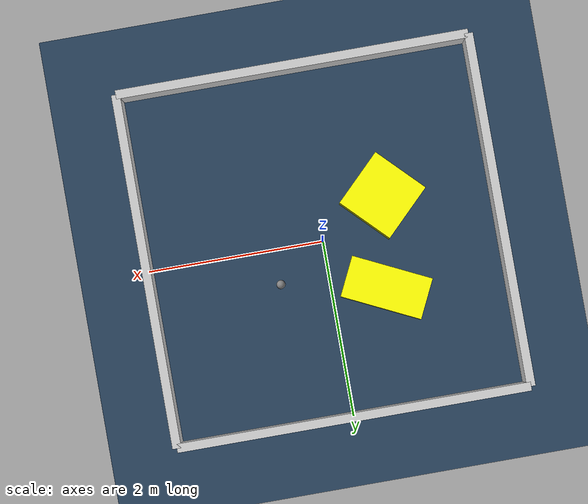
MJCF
<?xml version="1.0" ?>
<mujoco model="generated_environment">
  <option timestep="0.01" integrator="RK4" cone="elliptic"/>
  <default>
    <geom density="1"/>
  </default>
  <asset>
    <texture builtin="gradient" height="3072" rgb1="0.3 0.5 0.7" rgb2="0 0 0" type="skybox" width="512"/>
    <texture builtin="checker" height="300" mark="edge" markrgb="0.8 0.8 0.8" name="groundplane" rgb1="0.2 0.3 0.4" rgb2="0.1 0.2 0.3" type="2d" width="300"/>
    <material name="groundplane" reflectance="0.2" texrepeat="5 5" texture="groundplane" texuniform="true"/>
    <material name="robot" rgba="0.0 1.0 0.0 1"/>
  </asset>
  <worldbody>
    <light dir="0 0 -1" directional="true" pos="0 0 1.5"/>
    <geom condim="4" friction="1.0 0.005 0.001" material="groundplane" name="floor" size="0 0 0.05" type="plane"/>
    <body name="walls">
      <geom name="wall_1" condim="4" pos="-2.0 0.0 0.3" rgba="0.800000011920929 0.800000011920929 0.800000011920929 1.0" size="0.05 2.0 0.3" type="box"/>
      <geom name="wall_2" condim="4" pos="2.0 0.0 0.3" rgba="0.800000011920929 0.800000011920929 0.800000011920929 1.0" size="0.05 2.0 0.3" type="box"/>
      <geom name="wall_3" condim="4" pos="0.0 -2.0 0.3" rgba="0.800000011920929 0.800000011920929 0.800000011920929 1.0" size="2.0 0.05 0.3" type="box"/>
      <geom name="wall_4" condim="4" pos="0.0 2.0 0.3" rgba="0.800000011920929 0.800000011920929 0.800000011920929 1.0" size="2.0 0.05 0.3" type="box"/>
    </body>
    <body name="robot">
      <joint name="joint_x" type="slide" pos="0 0 0" axis="1 0 0"/>
      <joint name="joint_y" type="slide" pos="0 0 0" axis="0 1 0"/>
      <geom name="robot" type="sphere" pos="0.5501062614114569 0.3969801089982341 0.2" size="0.05" mass="5." friction="1.0 0.005 0.0001" condim="4"/>
      <site name="sensor_ball"/>
    </body>
    <body name="obstacle_1_movable">
      <geom name="obstacle_1_movable" condim="4" pos="-0.6128513174608354 0.6378030932084502 0.2" euler="0 0 64.21954168647312" friction="1.0 0.005 0.001" rgba="1 1 0 1" size="0.23817989625506075 0.4694133604311625 0.2" type="box" mass="0.1"/>
      <joint type="free"/>
    </body>
    <body name="obstacle_2_movable">
      <geom name="obstacle_2_movable" condim="4" pos="-0.7478645017961113 -0.3902406155631477 0.2" euler="0 0 224.80988519866085" friction="1.0 0.005 0.001" rgba="1 1 0 1" size="0.3504716107775282 0.34490958193403587 0.2" type="box" mass="0.1"/>
      <joint type="free"/>
    </body>
  </worldbody>
  <actuator>
    <motor name="actuator_x" joint="joint_x" gear="1" ctrlrange="-1 1"/>
    <motor name="actuator_y" joint="joint_y" gear="1" ctrlrange="-1 1"/>
  </actuator>
</mujoco>
